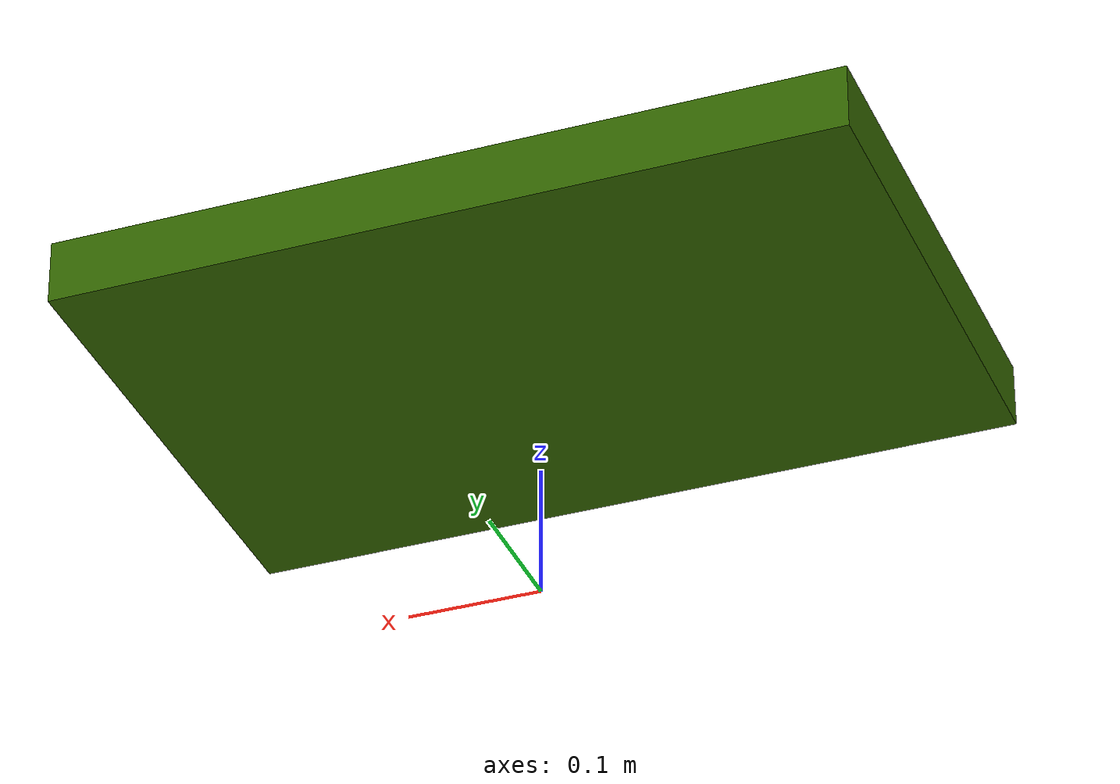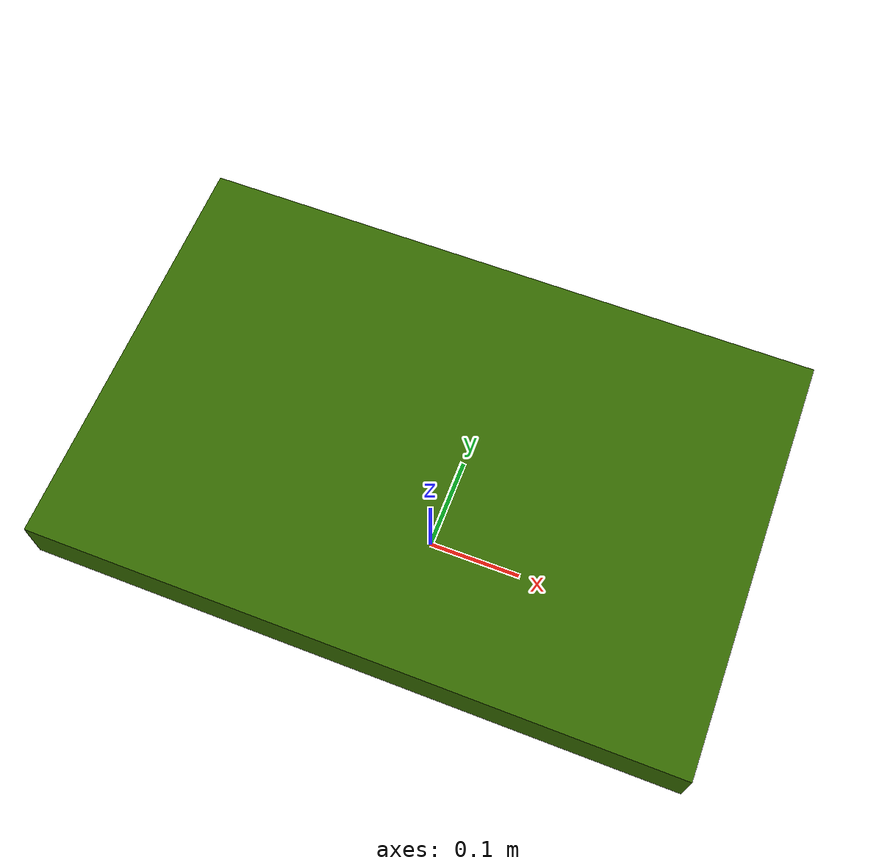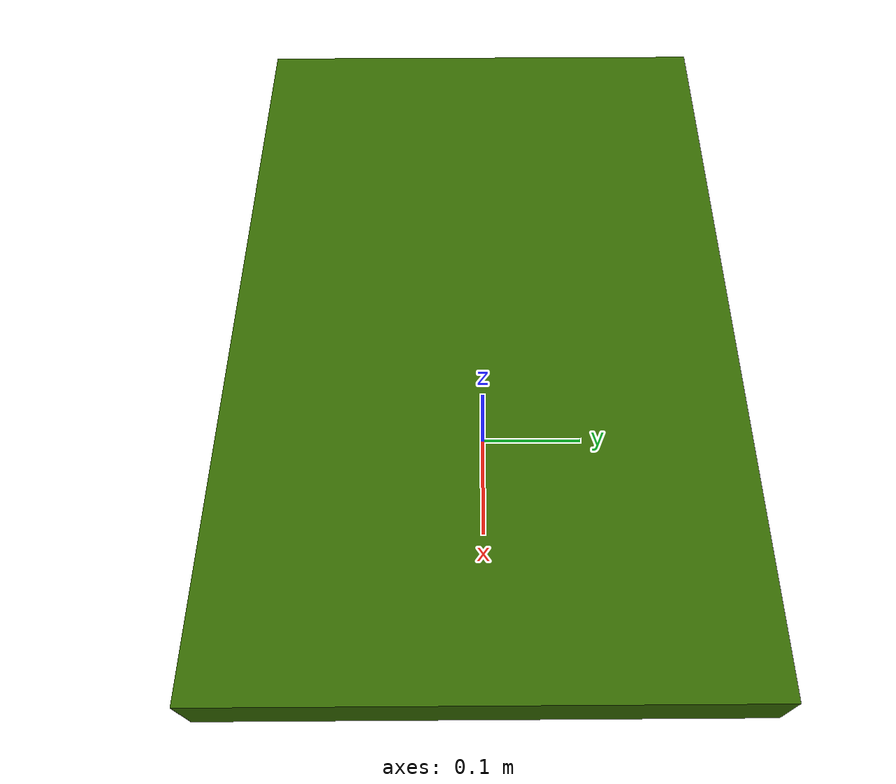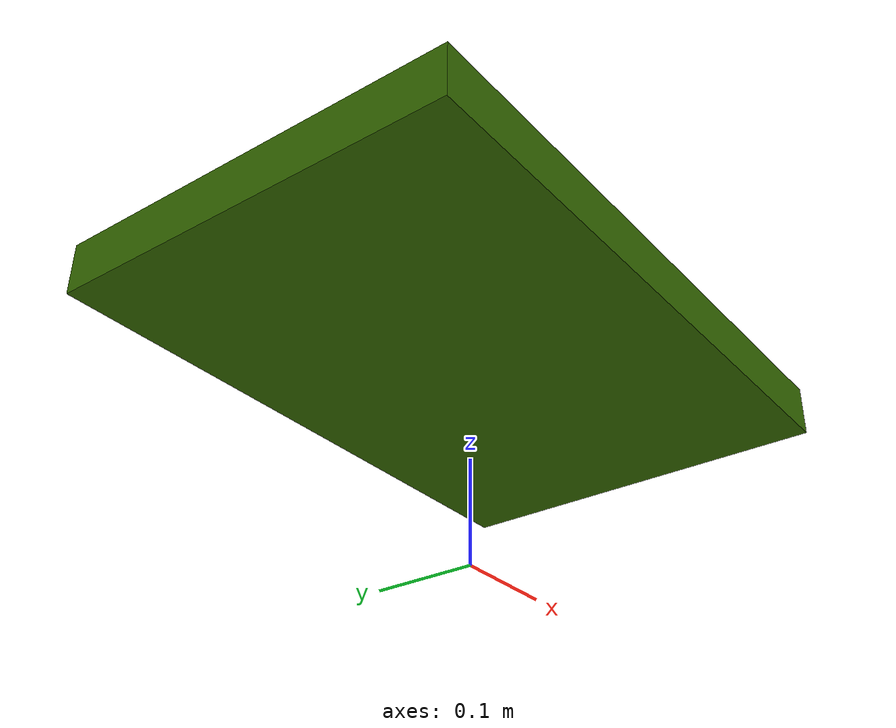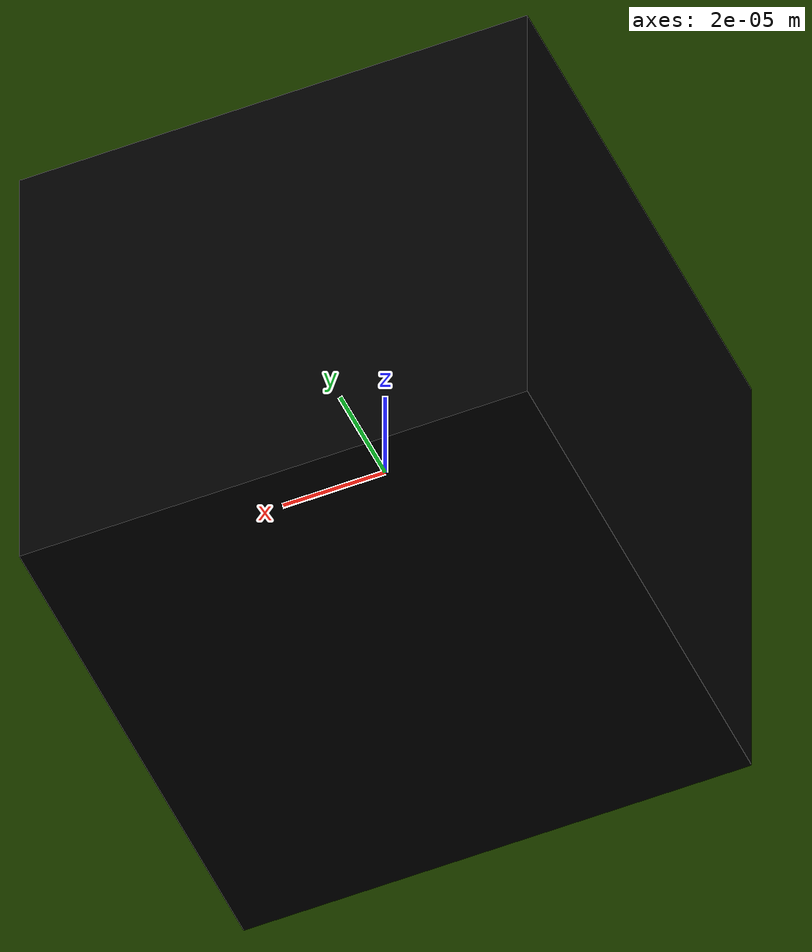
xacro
<?xml version="1.0" ?>
<robot name="base" xmlns:xacro="http://ros.org/wiki/xacro">

<xacro:property name="w_radius" value="${108.743/1e3}"/>

<link name="base_footprint">
    <visual>
        <geometry>
            <box size="0.0001 0.0001 0.0001"/>
        </geometry>
        <material name="transparente">
            <color rgba="0 0 0 0"/>
        </material>
    </visual>
</link>

<joint name="footprint_base_joint" type="fixed">
    <parent link="base_footprint"/>
    <child link="base_link"/>
    <origin xyz="0 0 ${w_radius*2}" rpy="0 0 0"/>
</joint>

<link name="base_link">

    <inertial>
        <origin xyz="${0/1e3} 0 ${1.417/1000}" rpy="${pi/2} 0 ${pi/2}"/>
        <mass value="5.771"/>
        <inertia ixx="${207161.695/(1e6)}"
                 ixy="${0}"                 iyy="${117325.409/(1e6)}"
                 ixz="${0}"                 iyz="${0}"                  izz="${320415.187/(1e6)}"/>
    </inertial>
    <visual>
        <origin xyz="${-300/1e3} 0 0" rpy="${pi/2} 0 ${pi/2}"/>
        <geometry>
            <mesh filename="package://hexapodo_description/meshes/chassis.stl" scale="0.001 0.001 0.001"/>
        </geometry>
        <material name="base_link_material">
            <color rgba="${51/255} ${102/255} ${0/255} 1"/>
        </material>
    </visual>
    <collision>
        <origin xyz="${-300/1e3} 0 0" rpy="${pi/2} 0 ${pi/2}"/>
        <geometry>
            <mesh filename="package://hexapodo_description/meshes/chassis.stl" scale="0.001 0.001 0.001"/>
        </geometry>
    </collision>

</link>

<gazebo reference="base_link">
    <material>Gazebo/Green</material>
</gazebo>

</robot>
